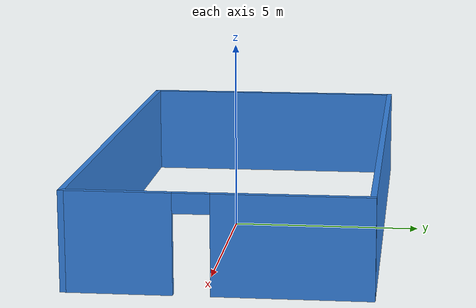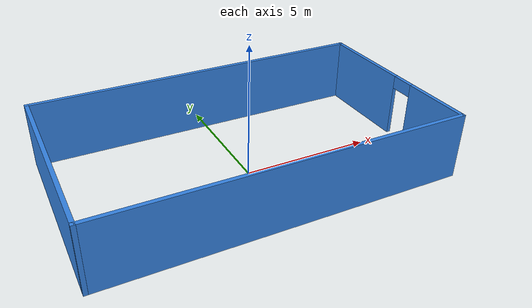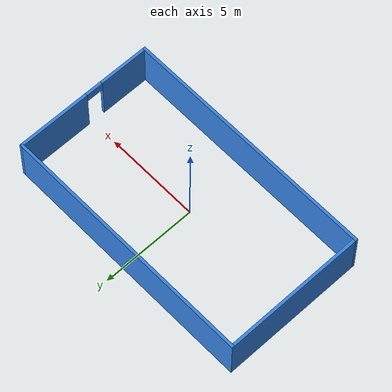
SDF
<?xml version='1.0'?>
<sdf version='1.7'>
  <model name='TestWorld1.world'>
    <pose>-0.133435 0.331839 0 0 -0 0</pose>
    <link name='Wall_0'>
      <collision name='Wall_0_Collision'>
        <geometry>
          <box>
            <size>13.5 0.15 2.5</size>
          </box>
        </geometry>
        <pose>0 0 1.25 0 -0 0</pose>
      </collision>
      <visual name='Wall_0_Visual'>
        <pose>0 0 1.25 0 -0 0</pose>
        <geometry>
          <box>
            <size>13.5 0.15 2.5</size>
          </box>
        </geometry>
        <material>
          <script>
            <uri>file://media/materials/scripts/gazebo.material</uri>
            <name>Gazebo/Grey</name>
          </script>
          <ambient>0.207843 0.517647 0.894118 1</ambient>
        </material>
        <meta>
          <layer>0</layer>
        </meta>
      </visual>
      <pose>-0 3.675 0 0 -0 3.14159</pose>
    </link>
    <link name='Wall_5'>
      <pose>6.675 -0 0 0 -0 -1.5708</pose>
      <visual name='Wall_5_Visual_0'>
        <pose>-1.80843 0 1.25 0 -0 0</pose>
        <geometry>
          <box>
            <size>3.88313 0.15 2.5</size>
          </box>
        </geometry>
        <material>
          <script>
            <uri>file://media/materials/scripts/gazebo.material</uri>
            <name>Gazebo/Grey</name>
          </script>
          <ambient>0.207843 0.517647 0.894118 1</ambient>
        </material>
        <meta>
          <layer>0</layer>
        </meta>
      </visual>
      <collision name='Wall_5_Collision_0'>
        <geometry>
          <box>
            <size>3.88313 0.15 2.5</size>
          </box>
        </geometry>
        <pose>-1.80843 0 1.25 0 -0 0</pose>
      </collision>
      <visual name='Wall_5_Visual_1'>
        <pose>2.39157 0 1.25 0 -0 0</pose>
        <geometry>
          <box>
            <size>2.71687 0.15 2.5</size>
          </box>
        </geometry>
        <material>
          <script>
            <uri>file://media/materials/scripts/gazebo.material</uri>
            <name>Gazebo/Grey</name>
          </script>
          <ambient>0.207843 0.517647 0.894118 1</ambient>
        </material>
        <meta>
          <layer>0</layer>
        </meta>
      </visual>
      <collision name='Wall_5_Collision_1'>
        <geometry>
          <box>
            <size>2.71687 0.15 2.5</size>
          </box>
        </geometry>
        <pose>2.39157 0 1.25 0 -0 0</pose>
      </collision>
      <visual name='Wall_5_Visual_2'>
        <pose>0.583132 0 2.25 0 -0 0</pose>
        <geometry>
          <box>
            <size>0.9 0.15 0.5</size>
          </box>
        </geometry>
        <material>
          <script>
            <uri>file://media/materials/scripts/gazebo.material</uri>
            <name>Gazebo/Grey</name>
          </script>
          <ambient>0.207843 0.517647 0.894118 1</ambient>
        </material>
        <meta>
          <layer>0</layer>
        </meta>
      </visual>
      <collision name='Wall_5_Collision_2'>
        <geometry>
          <box>
            <size>0.9 0.15 0.5</size>
          </box>
        </geometry>
        <pose>0.583132 0 2.25 0 -0 0</pose>
      </collision>
    </link>
    <link name='Wall_6'>
      <collision name='Wall_6_Collision'>
        <geometry>
          <box>
            <size>13.5 0.15 2.5</size>
          </box>
        </geometry>
        <pose>0 0 1.25 0 -0 0</pose>
      </collision>
      <visual name='Wall_6_Visual'>
        <pose>0 0 1.25 0 -0 0</pose>
        <geometry>
          <box>
            <size>13.5 0.15 2.5</size>
          </box>
        </geometry>
        <material>
          <script>
            <uri>file://media/materials/scripts/gazebo.material</uri>
            <name>Gazebo/Grey</name>
          </script>
          <ambient>0.207843 0.517647 0.894118 1</ambient>
        </material>
        <meta>
          <layer>0</layer>
        </meta>
      </visual>
      <pose>-0 -3.675 0 0 -0 3.14159</pose>
    </link>
    <link name='Wall_7'>
      <collision name='Wall_7_Collision'>
        <geometry>
          <box>
            <size>7.5 0.15 2.5</size>
          </box>
        </geometry>
        <pose>0 0 1.25 0 -0 0</pose>
      </collision>
      <visual name='Wall_7_Visual'>
        <pose>0 0 1.25 0 -0 0</pose>
        <geometry>
          <box>
            <size>7.5 0.15 2.5</size>
          </box>
        </geometry>
        <material>
          <script>
            <uri>file://media/materials/scripts/gazebo.material</uri>
            <name>Gazebo/Grey</name>
          </script>
          <ambient>0.207843 0.517647 0.894118 1</ambient>
        </material>
        <meta>
          <layer>0</layer>
        </meta>
      </visual>
      <pose>-6.675 -0 0 0 -0 1.5708</pose>
    </link>
    <static>1</static>
  </model>
</sdf>
